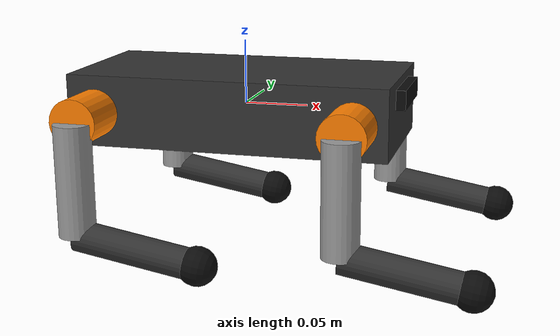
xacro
<?xml version="1.0"?>
<robot name="quadruped" xmlns:xacro="http://www.ros.org/wiki/xacro">

  <!-- ===================== PROPERTIES ===================== -->

  <!-- Body dimensions -->
  <xacro:property name="body_length" value="0.25"/>
  <xacro:property name="body_width"  value="0.12"/>
  <xacro:property name="body_height" value="0.055"/>
  <xacro:property name="body_mass"   value="1.2"/>

  <!-- Hip offset from body center -->
  <xacro:property name="hip_x_offset" value="0.10"/>
  <xacro:property name="hip_y_offset" value="0.065"/>
  <xacro:property name="hip_z_offset" value="0.0"/>

  <!-- Hip link dimensions -->
  <xacro:property name="hip_length" value="0.04"/>
  <xacro:property name="hip_radius" value="0.018"/>
  <xacro:property name="hip_mass"   value="0.08"/>

  <!-- Thigh link dimensions -->
  <xacro:property name="thigh_length" value="0.085"/>
  <xacro:property name="thigh_radius" value="0.014"/>
  <xacro:property name="thigh_mass"   value="0.10"/>

  <!-- Calf (shin) link dimensions -->
  <xacro:property name="calf_length" value="0.095"/>
  <xacro:property name="calf_radius" value="0.012"/>
  <xacro:property name="calf_mass"   value="0.06"/>

  <!-- Foot sphere -->
  <xacro:property name="foot_radius" value="0.015"/>
  <xacro:property name="foot_mass"   value="0.02"/>

  <!-- Joint limits (radians) -->
  <xacro:property name="hip_roll_min"  value="-0.6"/>
  <xacro:property name="hip_roll_max"  value="0.6"/>
  <xacro:property name="hip_pitch_min" value="-1.2"/>
  <xacro:property name="hip_pitch_max" value="1.2"/>
  <xacro:property name="knee_min"      value="-2.5"/>
  <xacro:property name="knee_max"      value="-0.3"/>

  <!-- Joint effort / velocity limits -->
  <xacro:property name="joint_effort"   value="15.0"/>
  <xacro:property name="joint_velocity" value="10.0"/>

  <!-- Colors -->
  <material name="dark_grey">
    <color rgba="0.2 0.2 0.2 1.0"/>
  </material>
  <material name="light_grey">
    <color rgba="0.6 0.6 0.6 1.0"/>
  </material>
  <material name="orange">
    <color rgba="1.0 0.5 0.0 1.0"/>
  </material>
  <material name="black">
    <color rgba="0.05 0.05 0.05 1.0"/>
  </material>

  <!-- ===================== INERTIA MACROS ===================== -->

  <xacro:macro name="box_inertia" params="m x y z">
    <inertial>
      <mass value="${m}"/>
      <inertia ixx="${m*(y*y+z*z)/12}" ixy="0" ixz="0"
               iyy="${m*(x*x+z*z)/12}" iyz="0"
               izz="${m*(x*x+y*y)/12}"/>
    </inertial>
  </xacro:macro>

  <xacro:macro name="cylinder_inertia" params="m r l">
    <inertial>
      <mass value="${m}"/>
      <inertia ixx="${m*(3*r*r+l*l)/12}" ixy="0" ixz="0"
               iyy="${m*(3*r*r+l*l)/12}" iyz="0"
               izz="${m*r*r/2}"/>
    </inertial>
  </xacro:macro>

  <xacro:macro name="sphere_inertia" params="m r">
    <inertial>
      <mass value="${m}"/>
      <inertia ixx="${2*m*r*r/5}" ixy="0" ixz="0"
               iyy="${2*m*r*r/5}" iyz="0"
               izz="${2*m*r*r/5}"/>
    </inertial>
  </xacro:macro>

  <!-- ===================== LEG MACRO ===================== -->
  <!--
    Params:
      prefix   : FL | FR | RL | RR
      x_sign   : +1 (front) | -1 (rear)
      y_sign   : +1 (left)  | -1 (right)
  -->
  <xacro:macro name="leg" params="prefix x_sign y_sign">

    <!-- ── HIP ROLL JOINT ── -->
    <joint name="${prefix}_hip_roll_joint" type="revolute">
      <parent link="base_link"/>
      <child  link="${prefix}_hip_link"/>
      <origin xyz="${x_sign*hip_x_offset} ${y_sign*hip_y_offset} ${hip_z_offset}" rpy="0 0 0"/>
      <axis xyz="1 0 0"/>
      <limit lower="${hip_roll_min}" upper="${hip_roll_max}"
             effort="${joint_effort}" velocity="${joint_velocity}"/>
      <dynamics damping="0.1" friction="0.05"/>
    </joint>

    <link name="${prefix}_hip_link">
      <xacro:cylinder_inertia m="${hip_mass}" r="${hip_radius}" l="${hip_length}"/>
      <visual>
        <origin xyz="0 ${y_sign*hip_length/2} 0" rpy="${pi/2} 0 0"/>
        <geometry>
          <cylinder radius="${hip_radius}" length="${hip_length}"/>
        </geometry>
        <material name="orange"/>
      </visual>
      <collision>
        <origin xyz="0 ${y_sign*hip_length/2} 0" rpy="${pi/2} 0 0"/>
        <geometry>
          <cylinder radius="${hip_radius}" length="${hip_length}"/>
        </geometry>
      </collision>
    </link>

    <!-- ── HIP PITCH JOINT ── -->
    <joint name="${prefix}_hip_pitch_joint" type="revolute">
      <parent link="${prefix}_hip_link"/>
      <child  link="${prefix}_thigh_link"/>
      <origin xyz="0 ${y_sign*hip_length} 0" rpy="0 0 0"/>
      <axis xyz="0 1 0"/>
      <limit lower="${hip_pitch_min}" upper="${hip_pitch_max}"
             effort="${joint_effort}" velocity="${joint_velocity}"/>
      <dynamics damping="0.1" friction="0.05"/>
    </joint>

    <link name="${prefix}_thigh_link">
      <xacro:cylinder_inertia m="${thigh_mass}" r="${thigh_radius}" l="${thigh_length}"/>
      <visual>
        <origin xyz="0 0 ${-thigh_length/2}" rpy="0 0 0"/>
        <geometry>
          <cylinder radius="${thigh_radius}" length="${thigh_length}"/>
        </geometry>
        <material name="light_grey"/>
      </visual>
      <collision>
        <origin xyz="0 0 ${-thigh_length/2}" rpy="0 0 0"/>
        <geometry>
          <cylinder radius="${thigh_radius}" length="${thigh_length}"/>
        </geometry>
      </collision>
    </link>

    <!-- ── KNEE PITCH JOINT ── -->
    <joint name="${prefix}_knee_joint" type="revolute">
      <parent link="${prefix}_thigh_link"/>
      <child  link="${prefix}_calf_link"/>
      <origin xyz="0 0 ${-thigh_length}" rpy="0 0 0"/>
      <axis xyz="0 1 0"/>
      <limit lower="${knee_min}" upper="${knee_max}"
             effort="${joint_effort}" velocity="${joint_velocity}"/>
      <dynamics damping="0.1" friction="0.05"/>
    </joint>

    <link name="${prefix}_calf_link">
      <xacro:cylinder_inertia m="${calf_mass}" r="${calf_radius}" l="${calf_length}"/>
      <visual>
        <origin xyz="0 0 ${-calf_length/2}" rpy="0 0 0"/>
        <geometry>
          <cylinder radius="${calf_radius}" length="${calf_length}"/>
        </geometry>
        <material name="dark_grey"/>
      </visual>
      <collision>
        <origin xyz="0 0 ${-calf_length/2}" rpy="0 0 0"/>
        <geometry>
          <cylinder radius="${calf_radius}" length="${calf_length}"/>
        </geometry>
      </collision>
    </link>

    <!-- ── FOOT (fixed) ── -->
    <joint name="${prefix}_foot_joint" type="fixed">
      <parent link="${prefix}_calf_link"/>
      <child  link="${prefix}_foot_link"/>
      <origin xyz="0 0 ${-calf_length}" rpy="0 0 0"/>
    </joint>

    <link name="${prefix}_foot_link">
      <xacro:sphere_inertia m="${foot_mass}" r="${foot_radius}"/>
      <visual>
        <origin xyz="0 0 0" rpy="0 0 0"/>
        <geometry>
          <sphere radius="${foot_radius}"/>
        </geometry>
        <material name="black"/>
      </visual>
      <collision>
        <origin xyz="0 0 0" rpy="0 0 0"/>
        <geometry>
          <sphere radius="${foot_radius}"/>
        </geometry>
        <contact_coefficients mu="0.8" kp="1000000.0" kd="100.0"/>
      </collision>
    </link>

  </xacro:macro>

  <!-- ===================== BASE LINK ===================== -->

  <link name="base_link">
    <xacro:box_inertia m="${body_mass}" x="${body_length}" y="${body_width}" z="${body_height}"/>
    <visual>
      <origin xyz="0 0 0" rpy="0 0 0"/>
      <geometry>
        <box size="${body_length} ${body_width} ${body_height}"/>
      </geometry>
      <material name="dark_grey"/>
    </visual>
    <collision>
      <origin xyz="0 0 0" rpy="0 0 0"/>
      <geometry>
        <box size="${body_length} ${body_width} ${body_height}"/>
      </geometry>
    </collision>
  </link>

  <!-- IMU link (center of body) -->
  <joint name="imu_joint" type="fixed">
    <parent link="base_link"/>
    <child  link="imu_link"/>
    <origin xyz="0 0 0" rpy="0 0 0"/>
  </joint>
  <link name="imu_link"/>

  <!-- Camera link (front face) -->
  <joint name="camera_joint" type="fixed">
    <parent link="base_link"/>
    <child  link="camera_link"/>
    <origin xyz="${body_length/2} 0 ${body_height/4}" rpy="0 0 0"/>
  </joint>
  <link name="camera_link">
    <visual>
      <geometry>
        <box size="0.015 0.06 0.015"/>
      </geometry>
      <material name="black"/>
    </visual>
  </link>

  <!-- ===================== INSTANTIATE LEGS ===================== -->

  <xacro:leg prefix="FL" x_sign="1"  y_sign="1"/>
  <xacro:leg prefix="FR" x_sign="1"  y_sign="-1"/>
  <xacro:leg prefix="RL" x_sign="-1" y_sign="1"/>
  <xacro:leg prefix="RR" x_sign="-1" y_sign="-1"/>

  <!-- ===================== ROS2_CONTROL HARDWARE ===================== -->
  <!--
    gz_ros2_control reads this block to bind each joint to the
    GazeboSimSystem hardware interface.
  -->
  <ros2_control name="GazeboSimSystem" type="system">
    <hardware>
      <plugin>gz_ros2_control/GazeboSimSystem</plugin>
    </hardware>

    <xacro:macro name="leg_joints_hw" params="prefix">
      <joint name="${prefix}_hip_roll_joint">
        <command_interface name="position">
          <param name="min">-0.6</param>
          <param name="max">0.6</param>
        </command_interface>
        <state_interface name="position"><param name="initial_value">0.0</param></state_interface>
        <state_interface name="velocity"/>
      </joint>
      <joint name="${prefix}_hip_pitch_joint">
        <command_interface name="position">
          <param name="min">-1.2</param>
          <param name="max">1.2</param>
        </command_interface>
        <state_interface name="position"><param name="initial_value">0.5</param></state_interface>
        <state_interface name="velocity"/>
      </joint>
      <joint name="${prefix}_knee_joint">
        <command_interface name="position">
          <param name="min">-2.5</param>
          <param name="max">-0.3</param>
        </command_interface>
        <state_interface name="position"><param name="initial_value">-1.2</param></state_interface>
        <state_interface name="velocity"/>
      </joint>
    </xacro:macro>

    <xacro:leg_joints_hw prefix="FL"/>
    <xacro:leg_joints_hw prefix="FR"/>
    <xacro:leg_joints_hw prefix="RL"/>
    <xacro:leg_joints_hw prefix="RR"/>
  </ros2_control>

  <!-- ===================== GAZEBO PLUGINS (Gazebo Harmonic / gz-sim) ===================== -->

  <!-- gz_ros2_control: replaces libgazebo_ros2_control.so -->
  <gazebo>
    <plugin filename="gz_ros2_control-system" name="gz_ros2_control::GazeboSimROS2ControlPlugin">
      <parameters>$(find mechdog_gazebo)/config/ros2_control.yaml</parameters>
      <ros>
        <namespace>/</namespace>
      </ros>
    </plugin>
    <plugin filename="gz-sim-pose-publisher-system" name="gz::sim::systems::PosePublisher">
      <publish_link_pose>true</publish_link_pose>
      <publish_nested_model_pose>true</publish_nested_model_pose>
      <use_pose_vector_msg>true</use_pose_vector_msg>
      <update_frequency>50</update_frequency>
    </plugin>
  </gazebo>

  <!-- IMU sensor (Gazebo Harmonic SDFormat style) -->
  <gazebo reference="imu_link">
    <sensor name="imu_sensor" type="imu">
      <always_on>true</always_on>
      <update_rate>200</update_rate>
      <topic>imu/data</topic>
      <gz_frame_id>imu_link</gz_frame_id>
      <imu>
        <angular_velocity>
          <x><noise type="gaussian"><mean>0</mean><stddev>0.009</stddev></noise></x>
          <y><noise type="gaussian"><mean>0</mean><stddev>0.009</stddev></noise></y>
          <z><noise type="gaussian"><mean>0</mean><stddev>0.009</stddev></noise></z>
        </angular_velocity>
        <linear_acceleration>
          <x><noise type="gaussian"><mean>0</mean><stddev>0.01</stddev></noise></x>
          <y><noise type="gaussian"><mean>0</mean><stddev>0.01</stddev></noise></y>
          <z><noise type="gaussian"><mean>0</mean><stddev>0.01</stddev></noise></z>
        </linear_acceleration>
      </imu>
    </sensor>
  </gazebo>

  <!-- Front camera (Gazebo Harmonic SDFormat style) -->
  <gazebo reference="camera_link">
    <sensor name="front_camera" type="camera">
      <always_on>true</always_on>
      <update_rate>30</update_rate>
      <topic>front_camera/image_raw</topic>
      <gz_frame_id>camera_link</gz_frame_id>
      <camera>
        <horizontal_fov>1.3962634</horizontal_fov>
        <image>
          <width>640</width>
          <height>480</height>
          <format>RGB_INT8</format>
        </image>
        <clip>
          <near>0.02</near>
          <far>300</far>
        </clip>
      </camera>
    </sensor>
    <sensor name="depth_camera" type="depth_camera">
      <always_on>true</always_on>
      <update_rate>30</update_rate>
      <topic>depth_camera/depth_image</topic>
      <gz_frame_id>camera_link</gz_frame_id>
      <camera>
        <horizontal_fov>1.3962634</horizontal_fov>
        <image>
          <width>640</width>
          <height>480</height>
          <format>R_FLOAT32</format>
        </image>
        <clip>
          <near>0.02</near>
          <far>300</far>
        </clip>
      </camera>
    </sensor>
  </gazebo>

  <!-- Foot contact sensors (Gazebo Harmonic) -->
  <xacro:macro name="foot_contact_sensor" params="prefix">
    <gazebo reference="${prefix}_foot_link">
      <sensor name="${prefix}_foot_contact" type="contact">
        <always_on>true</always_on>
        <update_rate>100</update_rate>
        <topic>${prefix}_foot_contact</topic>
        <contact>
          <collision>${prefix}_foot_link_collision</collision>
        </contact>
      </sensor>
    </gazebo>
  </xacro:macro>

  <xacro:foot_contact_sensor prefix="FL"/>
  <xacro:foot_contact_sensor prefix="FR"/>
  <xacro:foot_contact_sensor prefix="RL"/>
  <xacro:foot_contact_sensor prefix="RR"/>

</robot>
